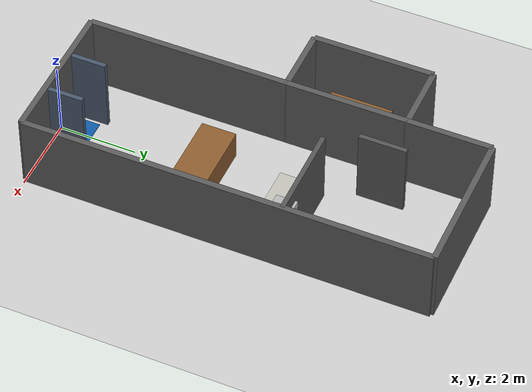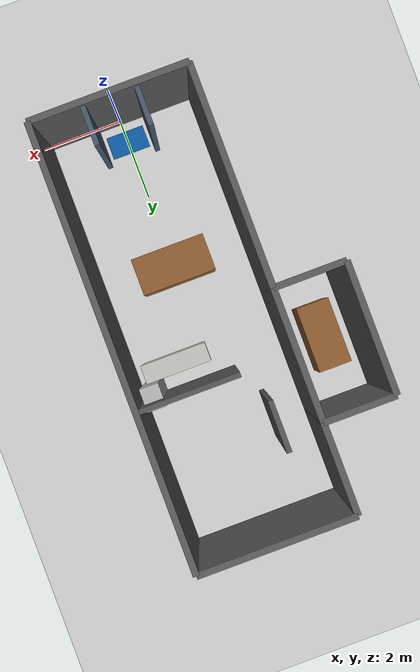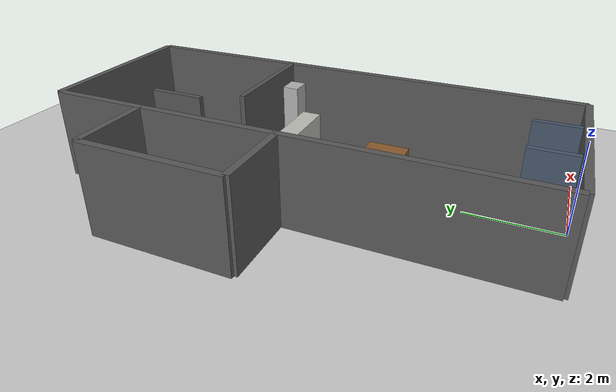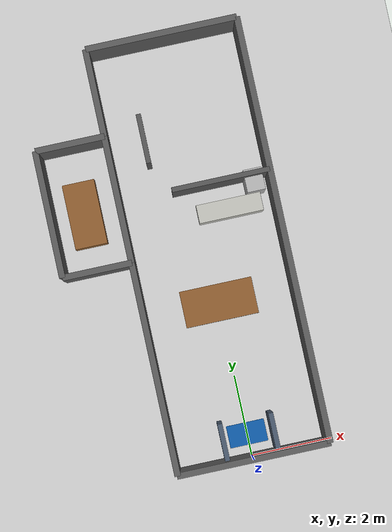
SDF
<?xml version="1.0" ?>
<sdf version="1.6">
  <world name="office_patrol_world">
    <physics name="default_physics" type="ode">
      <max_step_size>0.001</max_step_size>
      <real_time_factor>1.0</real_time_factor>
      <real_time_update_rate>1000</real_time_update_rate>
    </physics>

    <include>
      <uri>model://sun</uri>
    </include>
    <include>
      <uri>model://ground_plane</uri>
    </include>

    <scene>
      <ambient>0.15 0.15 0.18 1</ambient>
      <background>0.02 0.02 0.03 1</background>
    </scene>

    <!-- 기준: 도면 전체 약 3.72m x 10.44m, 벽 두께 0.15m, 높이 2.0m -->
    <!-- 좌표 기준: 중앙 통로/사무실을 x=0 기준, y=0은 입구 쪽 -->

    <!-- ===================== WALL HELPER MODELS ===================== -->
    <!-- 외벽: 오른쪽 긴 벽 -->
    <model name="wall_right_outer">
      <static>true</static>
      <pose>1.86 5.22 1 0 0 0</pose>
      <link name="link"><collision name="col"><geometry><box><size>0.15 10.44 2.0</size></box></geometry></collision><visual name="vis"><geometry><box><size>0.15 10.44 2.0</size></box></geometry><material><ambient>0.35 0.35 0.35 1</ambient><diffuse>0.35 0.35 0.35 1</diffuse></material></visual></link>
    </model>

    <!-- 외벽: 아래쪽 home 뒤쪽 벽 -->
    <model name="wall_bottom_center">
      <static>true</static>
      <pose>0.0 0 1 0 0 0</pose>
      <link name="link"><collision name="col"><geometry><box><size>3.75 0.15 2.0</size></box></geometry></collision><visual name="vis"><geometry><box><size>3.75 0.15 2.0</size></box></geometry><material><ambient>0.35 0.35 0.35 1</ambient><diffuse>0.35 0.35 0.35 1</diffuse></material></visual></link>
    </model>

    <!-- 로봇 홈/대기 공간: 위쪽 입구 개방 -->
    <model name="home_bay_left_wall">
      <static>true</static>
      <pose>-0.62 0.55 1 0 0 0</pose>
      <link name="link"><collision name="col"><geometry><box><size>0.12 0.90 2.0</size></box></geometry></collision><visual name="vis"><geometry><box><size>0.12 0.90 2.0</size></box></geometry><material><ambient>0.28 0.34 0.42 1</ambient><diffuse>0.28 0.34 0.42 1</diffuse></material></visual></link>
    </model>
    <model name="home_bay_right_wall">
      <static>true</static>
      <pose>0.62 0.55 1 0 0 0</pose>
      <link name="link"><collision name="col"><geometry><box><size>0.12 0.90 2.0</size></box></geometry></collision><visual name="vis"><geometry><box><size>0.12 0.90 2.0</size></box></geometry><material><ambient>0.28 0.34 0.42 1</ambient><diffuse>0.28 0.34 0.42 1</diffuse></material></visual></link>
    </model>
    <model name="home_bay_floor_marker">
      <static>true</static>
      <pose>0.0 0.55 0.011 0 0 0</pose>
      <link name="link"><visual name="vis"><geometry><box><size>0.95 0.55 0.02</size></box></geometry><material><ambient>0.05 0.35 0.65 1</ambient><diffuse>0.05 0.35 0.65 1</diffuse></material></visual></link>
    </model>

    <!-- 외벽: 왼쪽 아래 긴 벽, 중간 사무실 때문에 꺾이는 구조 -->
    <model name="wall_left_lower_outer">
      <static>true</static>
      <pose>-1.86 2.60 1 0 0 0</pose>
      <link name="link"><collision name="col"><geometry><box><size>0.15 5.20 2.0</size></box></geometry></collision><visual name="vis"><geometry><box><size>0.15 5.20 2.0</size></box></geometry><material><ambient>0.35 0.35 0.35 1</ambient><diffuse>0.35 0.35 0.35 1</diffuse></material></visual></link>
    </model>

    <!-- 왼쪽 돌출 대표실 외벽 -->
    <model name="wall_left_room_outer">
      <static>true</static>
      <pose>-3.55 6.75 1 0 0 0</pose>
      <link name="link"><collision name="col"><geometry><box><size>0.15 3.10 2.0</size></box></geometry></collision><visual name="vis"><geometry><box><size>0.15 3.10 2.0</size></box></geometry><material><ambient>0.35 0.35 0.35 1</ambient><diffuse>0.35 0.35 0.35 1</diffuse></material></visual></link>
    </model>
    <model name="wall_left_room_top">
      <static>true</static>
      <pose>-2.70 8.30 1 0 0 0</pose>
      <link name="link"><collision name="col"><geometry><box><size>1.70 0.15 2.0</size></box></geometry></collision><visual name="vis"><geometry><box><size>1.70 0.15 2.0</size></box></geometry><material><ambient>0.35 0.35 0.35 1</ambient><diffuse>0.35 0.35 0.35 1</diffuse></material></visual></link>
    </model>
    <model name="wall_left_room_bottom">
      <static>true</static>
      <pose>-2.70 5.20 1 0 0 0</pose>
      <link name="link"><collision name="col"><geometry><box><size>1.70 0.15 2.0</size></box></geometry></collision><visual name="vis"><geometry><box><size>1.70 0.15 2.0</size></box></geometry><material><ambient>0.35 0.35 0.35 1</ambient><diffuse>0.35 0.35 0.35 1</diffuse></material></visual></link>
    </model>
    <model name="wall_left_room_inner">
      <static>true</static>
      <pose>-1.86 6.75 1 0 0 0</pose>
      <link name="link"><collision name="col"><geometry><box><size>0.15 3.10 2.0</size></box></geometry></collision><visual name="vis"><geometry><box><size>0.15 3.10 2.0</size></box></geometry><material><ambient>0.35 0.35 0.35 1</ambient><diffuse>0.35 0.35 0.35 1</diffuse></material></visual></link>
    </model>

    <!-- 상단 큰 사무공간 외벽 -->
    <model name="wall_top_outer">
      <static>true</static>
      <pose>0 10.44 1 0 0 0</pose>
      <link name="link"><collision name="col"><geometry><box><size>3.72 0.15 2.0</size></box></geometry></collision><visual name="vis"><geometry><box><size>3.72 0.15 2.0</size></box></geometry><material><ambient>0.35 0.35 0.35 1</ambient><diffuse>0.35 0.35 0.35 1</diffuse></material></visual></link>
    </model>
    <model name="wall_left_upper_outer">
      <static>true</static>
      <pose>-1.86 9.35 1 0 0 0</pose>
      <link name="link"><collision name="col"><geometry><box><size>0.15 2.18 2.0</size></box></geometry></collision><visual name="vis"><geometry><box><size>0.15 2.18 2.0</size></box></geometry><material><ambient>0.35 0.35 0.35 1</ambient><diffuse>0.35 0.35 0.35 1</diffuse></material></visual></link>
    </model>

    <!-- 내부 벽: 싱크대/사무공간 구분 -->
    <model name="wall_kitchen_top_partition">
      <static>true</static>
      <pose>0.65 6.70 1 0 0 0</pose>
      <link name="link"><collision name="col"><geometry><box><size>2.40 0.12 2.0</size></box></geometry></collision><visual name="vis"><geometry><box><size>2.40 0.12 2.0</size></box></geometry><material><ambient>0.33 0.33 0.33 1</ambient><diffuse>0.33 0.33 0.33 1</diffuse></material></visual></link>
    </model>

    <model name="wall_office_partition">
      <static>true</static>
      <pose>-0.95 8.05 1 0 0 0</pose>
      <link name="link"><collision name="col"><geometry><box><size>0.12 1.20 2.0</size></box></geometry></collision><visual name="vis"><geometry><box><size>0.12 1.20 2.0</size></box></geometry><material><ambient>0.33 0.33 0.33 1</ambient><diffuse>0.33 0.33 0.33 1</diffuse></material></visual></link>
    </model>

    <!-- ===================== FURNITURE ===================== -->
    <!-- 회의실 테이블 -->
    <model name="meeting_table">
      <static>true</static>
      <pose>0 3.85 0.38 0 0 0</pose>
      <link name="link"><collision name="col"><geometry><box><size>1.8 0.9 0.75</size></box></geometry></collision><visual name="vis"><geometry><box><size>1.8 0.9 0.75</size></box></geometry><material><ambient>0.55 0.36 0.18 1</ambient><diffuse>0.55 0.36 0.18 1</diffuse></material></visual></link>
    </model>

    <!-- 상단 사무실 책상 2개 -->

    <!-- 대표실 책상 -->
    <model name="ceo_desk"><static>true</static><pose>-2.75 6.65 0.38 0 0 1.5708</pose><link name="link"><collision name="col"><geometry><box><size>1.6 0.8 0.75</size></box></geometry></collision><visual name="vis"><geometry><box><size>1.6 0.8 0.75</size></box></geometry><material><ambient>0.55 0.36 0.18 1</ambient><diffuse>0.55 0.36 0.18 1</diffuse></material></visual></link></model>

    <!-- 싱크대/냉장고 -->
    <model name="sink_counter"><static>true</static><pose>0.75 6.05 0.45 0 0 0</pose><link name="link"><collision name="col"><geometry><box><size>1.6 0.45 0.9</size></box></geometry></collision><visual name="vis"><geometry><box><size>1.6 0.45 0.9</size></box></geometry><material><ambient>0.75 0.75 0.72 1</ambient><diffuse>0.75 0.75 0.72 1</diffuse></material></visual></link></model>
    <model name="fridge"><static>true</static><pose>1.45 6.55 0.8 0 0 0</pose><link name="link"><collision name="col"><geometry><box><size>0.45 0.55 1.6</size></box></geometry></collision><visual name="vis"><geometry><box><size>0.45 0.55 1.6</size></box></geometry><material><ambient>0.70 0.70 0.70 1</ambient><diffuse>0.70 0.70 0.70 1</diffuse></material></visual></link></model>

  </world>
</sdf>
